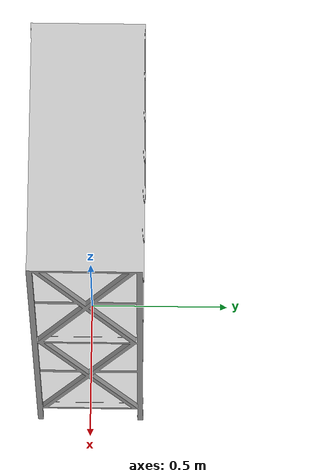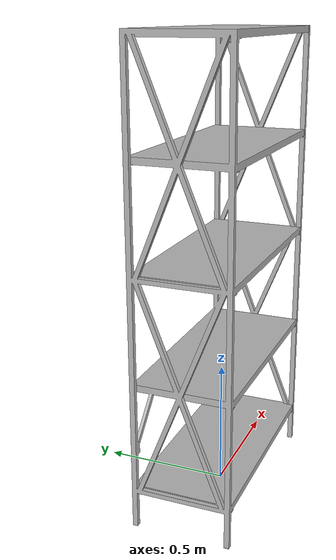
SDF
<sdf version="1.6">
	<model name="StandingShelfUnits_Oa35498354022_lod0">
		<link name="main_link">
			<visual name="visual_RootNode">
				<geometry>
					<mesh>
						<uri>model://StandingShelfUnits_Oa35498354022_lod0/meshes/visual_RootNode.dae</uri>
					</mesh>
				</geometry>
			</visual>
			<collision name="collision_RootNode_lod0_0">
				<geometry>
					<mesh>
						<uri>model://StandingShelfUnits_Oa35498354022_lod0/meshes/collision_RootNode_lod0_0.dae</uri>
					</mesh>
				</geometry>
			</collision>
		</link>
	</model>
</sdf>
